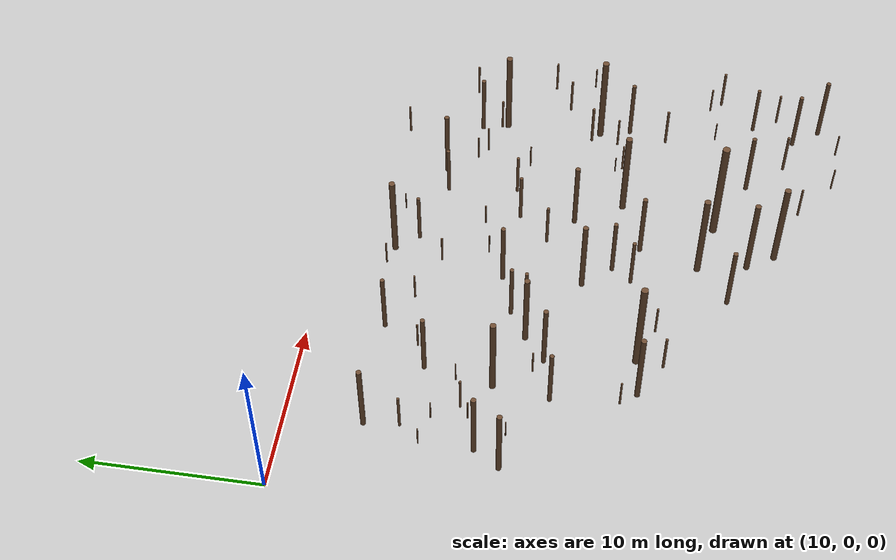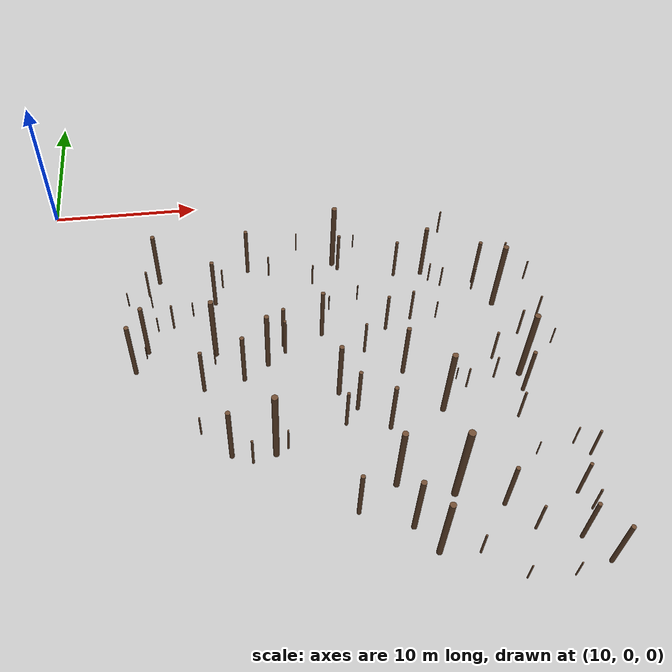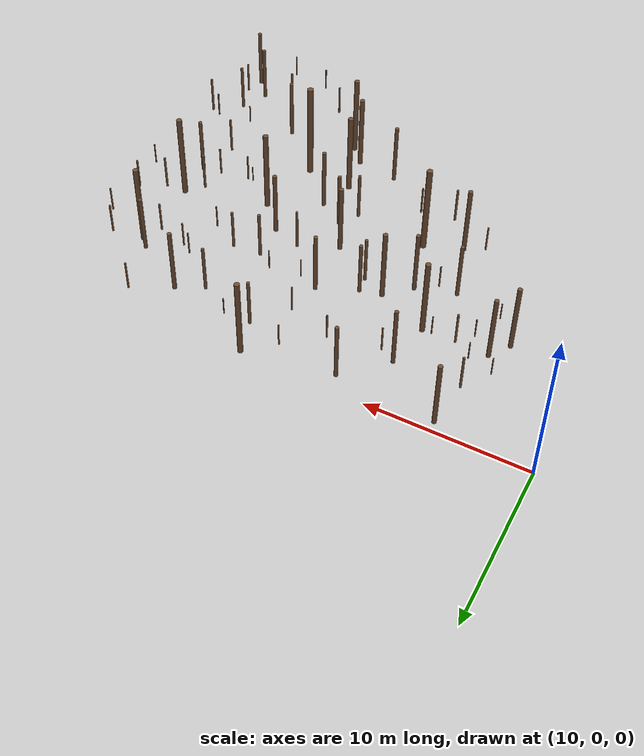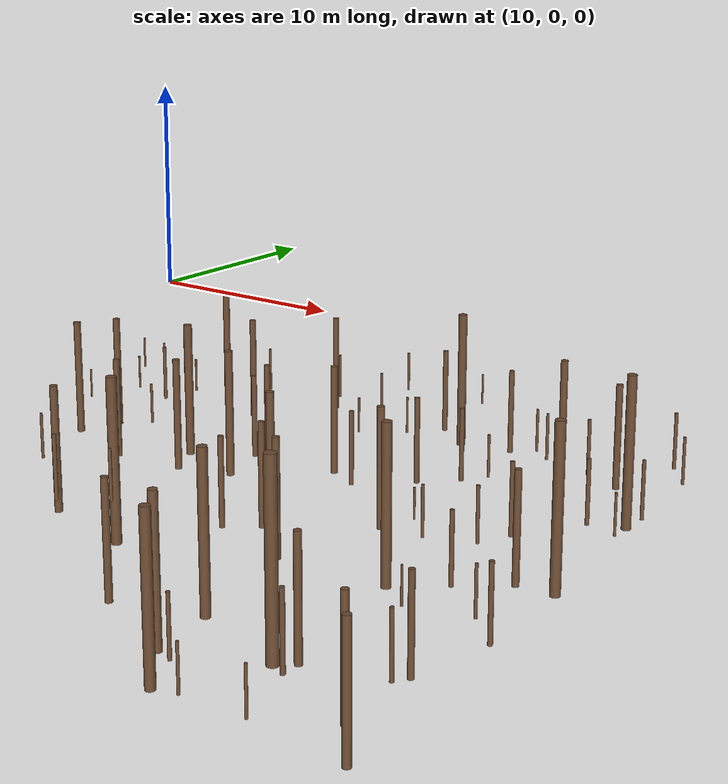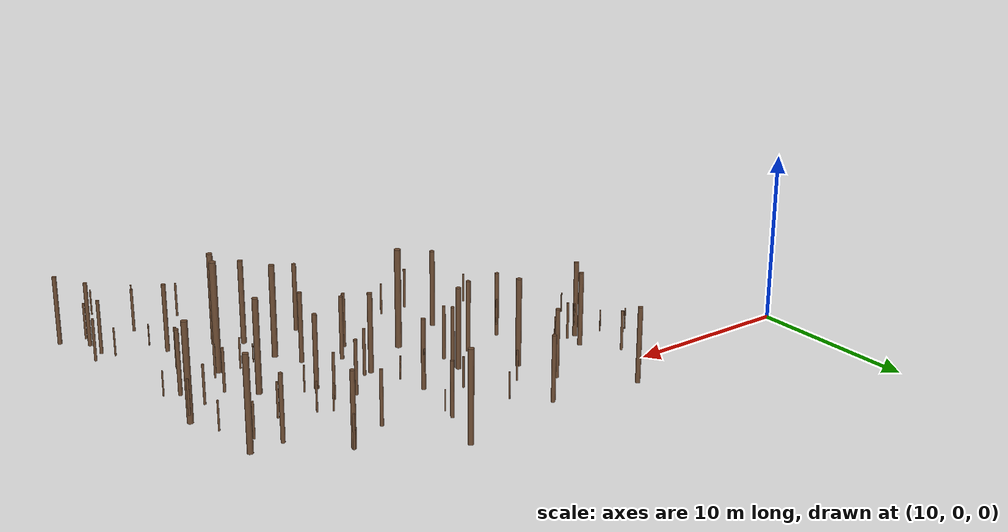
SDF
<sdf version="1.10">
 <model name="lehrforst_trees">
  <static>true</static>
  <link name="tree_0034">
   <pose>35.26 -22.294 -1.24 3.14159 0 0</pose>
   <visual name="visual">
    <geometry><cylinder><radius>0.230</radius><length>7.360</length></cylinder></geometry>
    <material>
     <ambient>0.42 0.29 0.19 1</ambient>
     <diffuse>0.42 0.29 0.19 1</diffuse>
     <specular>0.42 0.29 0.19 1</specular>
    </material>
   </visual>
   <collision name="collision">
    <geometry><cylinder><radius>0.230</radius><length>7.360</length></cylinder></geometry>
   </collision>
  </link>
  <link name="tree_0080">
   <pose>24.254 -18.389 -1.363 3.14159 0 0</pose>
   <visual name="visual">
    <geometry><cylinder><radius>0.209</radius><length>6.688</length></cylinder></geometry>
    <material>
     <ambient>0.42 0.29 0.19 1</ambient>
     <diffuse>0.42 0.29 0.19 1</diffuse>
     <specular>0.42 0.29 0.19 1</specular>
    </material>
   </visual>
   <collision name="collision">
    <geometry><cylinder><radius>0.209</radius><length>6.688</length></cylinder></geometry>
   </collision>
  </link>
  <link name="tree_0128">
   <pose>41.271 -14.518 -0.474 3.14159 0 0</pose>
   <visual name="visual">
    <geometry><cylinder><radius>0.197</radius><length>6.304</length></cylinder></geometry>
    <material>
     <ambient>0.42 0.29 0.19 1</ambient>
     <diffuse>0.42 0.29 0.19 1</diffuse>
     <specular>0.42 0.29 0.19 1</specular>
    </material>
   </visual>
   <collision name="collision">
    <geometry><cylinder><radius>0.197</radius><length>6.304</length></cylinder></geometry>
   </collision>
  </link>
  <link name="tree_0133">
   <pose>33.437 -26.119 -1.676 3.14159 0 0</pose>
   <visual name="visual">
    <geometry><cylinder><radius>0.194</radius><length>6.208</length></cylinder></geometry>
    <material>
     <ambient>0.42 0.29 0.19 1</ambient>
     <diffuse>0.42 0.29 0.19 1</diffuse>
     <specular>0.42 0.29 0.19 1</specular>
    </material>
   </visual>
   <collision name="collision">
    <geometry><cylinder><radius>0.194</radius><length>6.208</length></cylinder></geometry>
   </collision>
  </link>
  <link name="tree_0134">
   <pose>31.612 -21.485 -1.44 3.14159 0 0</pose>
   <visual name="visual">
    <geometry><cylinder><radius>0.194</radius><length>6.208</length></cylinder></geometry>
    <material>
     <ambient>0.42 0.29 0.19 1</ambient>
     <diffuse>0.42 0.29 0.19 1</diffuse>
     <specular>0.42 0.29 0.19 1</specular>
    </material>
   </visual>
   <collision name="collision">
    <geometry><cylinder><radius>0.194</radius><length>6.208</length></cylinder></geometry>
   </collision>
  </link>
  <link name="tree_0143">
   <pose>35.634 -16.514 -1.045 3.14159 0 0</pose>
   <visual name="visual">
    <geometry><cylinder><radius>0.192</radius><length>6.144</length></cylinder></geometry>
    <material>
     <ambient>0.42 0.29 0.19 1</ambient>
     <diffuse>0.42 0.29 0.19 1</diffuse>
     <specular>0.42 0.29 0.19 1</specular>
    </material>
   </visual>
   <collision name="collision">
    <geometry><cylinder><radius>0.192</radius><length>6.144</length></cylinder></geometry>
   </collision>
  </link>
  <link name="tree_0173">
   <pose>40.775 -8.554 -0.27 3.14159 0 0</pose>
   <visual name="visual">
    <geometry><cylinder><radius>0.186</radius><length>5.952</length></cylinder></geometry>
    <material>
     <ambient>0.42 0.29 0.19 1</ambient>
     <diffuse>0.42 0.29 0.19 1</diffuse>
     <specular>0.42 0.29 0.19 1</specular>
    </material>
   </visual>
   <collision name="collision">
    <geometry><cylinder><radius>0.186</radius><length>5.952</length></cylinder></geometry>
   </collision>
  </link>
  <link name="tree_0188">
   <pose>29.904 -3.082 -0.838 3.14159 0 0</pose>
   <visual name="visual">
    <geometry><cylinder><radius>0.182</radius><length>5.824</length></cylinder></geometry>
    <material>
     <ambient>0.42 0.29 0.19 1</ambient>
     <diffuse>0.42 0.29 0.19 1</diffuse>
     <specular>0.42 0.29 0.19 1</specular>
    </material>
   </visual>
   <collision name="collision">
    <geometry><cylinder><radius>0.182</radius><length>5.824</length></cylinder></geometry>
   </collision>
  </link>
  <link name="tree_0197">
   <pose>20.782 -10.396 -1.178 3.14159 0 0</pose>
   <visual name="visual">
    <geometry><cylinder><radius>0.180</radius><length>5.760</length></cylinder></geometry>
    <material>
     <ambient>0.42 0.29 0.19 1</ambient>
     <diffuse>0.42 0.29 0.19 1</diffuse>
     <specular>0.42 0.29 0.19 1</specular>
    </material>
   </visual>
   <collision name="collision">
    <geometry><cylinder><radius>0.180</radius><length>5.760</length></cylinder></geometry>
   </collision>
  </link>
  <link name="tree_0222">
   <pose>32.17 -24.463 -1.665 3.14159 0 0</pose>
   <visual name="visual">
    <geometry><cylinder><radius>0.177</radius><length>5.664</length></cylinder></geometry>
    <material>
     <ambient>0.42 0.29 0.19 1</ambient>
     <diffuse>0.42 0.29 0.19 1</diffuse>
     <specular>0.42 0.29 0.19 1</specular>
    </material>
   </visual>
   <collision name="collision">
    <geometry><cylinder><radius>0.177</radius><length>5.664</length></cylinder></geometry>
   </collision>
  </link>
  <link name="tree_0275">
   <pose>24.317 -11.821 -1.164 3.14159 0 0</pose>
   <visual name="visual">
    <geometry><cylinder><radius>0.166</radius><length>5.312</length></cylinder></geometry>
    <material>
     <ambient>0.42 0.29 0.19 1</ambient>
     <diffuse>0.42 0.29 0.19 1</diffuse>
     <specular>0.42 0.29 0.19 1</specular>
    </material>
   </visual>
   <collision name="collision">
    <geometry><cylinder><radius>0.166</radius><length>5.312</length></cylinder></geometry>
   </collision>
  </link>
  <link name="tree_0296">
   <pose>28.853 -14.649 -1.272 3.14159 0 0</pose>
   <visual name="visual">
    <geometry><cylinder><radius>0.163</radius><length>5.216</length></cylinder></geometry>
    <material>
     <ambient>0.42 0.29 0.19 1</ambient>
     <diffuse>0.42 0.29 0.19 1</diffuse>
     <specular>0.42 0.29 0.19 1</specular>
    </material>
   </visual>
   <collision name="collision">
    <geometry><cylinder><radius>0.163</radius><length>5.216</length></cylinder></geometry>
   </collision>
  </link>
  <link name="tree_0307">
   <pose>21.382 -18.65 -1.42 3.14159 0 0</pose>
   <visual name="visual">
    <geometry><cylinder><radius>0.161</radius><length>5.152</length></cylinder></geometry>
    <material>
     <ambient>0.42 0.29 0.19 1</ambient>
     <diffuse>0.42 0.29 0.19 1</diffuse>
     <specular>0.42 0.29 0.19 1</specular>
    </material>
   </visual>
   <collision name="collision">
    <geometry><cylinder><radius>0.161</radius><length>5.152</length></cylinder></geometry>
   </collision>
  </link>
  <link name="tree_0325">
   <pose>15.254 -11.534 -1.339 3.14159 0 0</pose>
   <visual name="visual">
    <geometry><cylinder><radius>0.157</radius><length>5.024</length></cylinder></geometry>
    <material>
     <ambient>0.42 0.29 0.19 1</ambient>
     <diffuse>0.42 0.29 0.19 1</diffuse>
     <specular>0.42 0.29 0.19 1</specular>
    </material>
   </visual>
   <collision name="collision">
    <geometry><cylinder><radius>0.157</radius><length>5.024</length></cylinder></geometry>
   </collision>
  </link>
  <link name="tree_0349">
   <pose>16.989 -3.622 -1.29 3.14159 0 0</pose>
   <visual name="visual">
    <geometry><cylinder><radius>0.153</radius><length>4.896</length></cylinder></geometry>
    <material>
     <ambient>0.42 0.29 0.19 1</ambient>
     <diffuse>0.42 0.29 0.19 1</diffuse>
     <specular>0.42 0.29 0.19 1</specular>
    </material>
   </visual>
   <collision name="collision">
    <geometry><cylinder><radius>0.153</radius><length>4.896</length></cylinder></geometry>
   </collision>
  </link>
  <link name="tree_0359">
   <pose>16.137 -10.009 -1.289 3.14159 0 0</pose>
   <visual name="visual">
    <geometry><cylinder><radius>0.152</radius><length>4.864</length></cylinder></geometry>
    <material>
     <ambient>0.42 0.29 0.19 1</ambient>
     <diffuse>0.42 0.29 0.19 1</diffuse>
     <specular>0.42 0.29 0.19 1</specular>
    </material>
   </visual>
   <collision name="collision">
    <geometry><cylinder><radius>0.152</radius><length>4.864</length></cylinder></geometry>
   </collision>
  </link>
  <link name="tree_0364">
   <pose>33.336 -13.698 -0.994 3.14159 0 0</pose>
   <visual name="visual">
    <geometry><cylinder><radius>0.149</radius><length>4.768</length></cylinder></geometry>
    <material>
     <ambient>0.42 0.29 0.19 1</ambient>
     <diffuse>0.42 0.29 0.19 1</diffuse>
     <specular>0.42 0.29 0.19 1</specular>
    </material>
   </visual>
   <collision name="collision">
    <geometry><cylinder><radius>0.149</radius><length>4.768</length></cylinder></geometry>
   </collision>
  </link>
  <link name="tree_0375">
   <pose>36.153 -5.321 -0.683 3.14159 0 0</pose>
   <visual name="visual">
    <geometry><cylinder><radius>0.147</radius><length>4.704</length></cylinder></geometry>
    <material>
     <ambient>0.42 0.29 0.19 1</ambient>
     <diffuse>0.42 0.29 0.19 1</diffuse>
     <specular>0.42 0.29 0.19 1</specular>
    </material>
   </visual>
   <collision name="collision">
    <geometry><cylinder><radius>0.147</radius><length>4.704</length></cylinder></geometry>
   </collision>
  </link>
  <link name="tree_0385">
   <pose>22.614 -13.105 -1.21 3.14159 0 0</pose>
   <visual name="visual">
    <geometry><cylinder><radius>0.146</radius><length>4.672</length></cylinder></geometry>
    <material>
     <ambient>0.42 0.29 0.19 1</ambient>
     <diffuse>0.42 0.29 0.19 1</diffuse>
     <specular>0.42 0.29 0.19 1</specular>
    </material>
   </visual>
   <collision name="collision">
    <geometry><cylinder><radius>0.146</radius><length>4.672</length></cylinder></geometry>
   </collision>
  </link>
  <link name="tree_0402">
   <pose>31.808 -17.876 -1.258 3.14159 0 0</pose>
   <visual name="visual">
    <geometry><cylinder><radius>0.144</radius><length>4.608</length></cylinder></geometry>
    <material>
     <ambient>0.42 0.29 0.19 1</ambient>
     <diffuse>0.42 0.29 0.19 1</diffuse>
     <specular>0.42 0.29 0.19 1</specular>
    </material>
   </visual>
   <collision name="collision">
    <geometry><cylinder><radius>0.144</radius><length>4.608</length></cylinder></geometry>
   </collision>
  </link>
  <link name="tree_0405">
   <pose>28.887 -23.378 -1.755 3.14159 0 0</pose>
   <visual name="visual">
    <geometry><cylinder><radius>0.143</radius><length>4.576</length></cylinder></geometry>
    <material>
     <ambient>0.42 0.29 0.19 1</ambient>
     <diffuse>0.42 0.29 0.19 1</diffuse>
     <specular>0.42 0.29 0.19 1</specular>
    </material>
   </visual>
   <collision name="collision">
    <geometry><cylinder><radius>0.143</radius><length>4.576</length></cylinder></geometry>
   </collision>
  </link>
  <link name="tree_0420">
   <pose>28.259 -9.927 -1.147 3.14159 0 0</pose>
   <visual name="visual">
    <geometry><cylinder><radius>0.141</radius><length>4.512</length></cylinder></geometry>
    <material>
     <ambient>0.42 0.29 0.19 1</ambient>
     <diffuse>0.42 0.29 0.19 1</diffuse>
     <specular>0.42 0.29 0.19 1</specular>
    </material>
   </visual>
   <collision name="collision">
    <geometry><cylinder><radius>0.141</radius><length>4.512</length></cylinder></geometry>
   </collision>
  </link>
  <link name="tree_0426">
   <pose>42.952 -28.404 -0.898 3.14159 0 0</pose>
   <visual name="visual">
    <geometry><cylinder><radius>0.140</radius><length>4.480</length></cylinder></geometry>
    <material>
     <ambient>0.42 0.29 0.19 1</ambient>
     <diffuse>0.42 0.29 0.19 1</diffuse>
     <specular>0.42 0.29 0.19 1</specular>
    </material>
   </visual>
   <collision name="collision">
    <geometry><cylinder><radius>0.140</radius><length>4.480</length></cylinder></geometry>
   </collision>
  </link>
  <link name="tree_0431">
   <pose>37.771 -24.047 -1.22 3.14159 0 0</pose>
   <visual name="visual">
    <geometry><cylinder><radius>0.139</radius><length>4.448</length></cylinder></geometry>
    <material>
     <ambient>0.42 0.29 0.19 1</ambient>
     <diffuse>0.42 0.29 0.19 1</diffuse>
     <specular>0.42 0.29 0.19 1</specular>
    </material>
   </visual>
   <collision name="collision">
    <geometry><cylinder><radius>0.139</radius><length>4.448</length></cylinder></geometry>
   </collision>
  </link>
  <link name="tree_0439">
   <pose>21.001 -6.414 -1.113 3.14159 0 0</pose>
   <visual name="visual">
    <geometry><cylinder><radius>0.138</radius><length>4.416</length></cylinder></geometry>
    <material>
     <ambient>0.42 0.29 0.19 1</ambient>
     <diffuse>0.42 0.29 0.19 1</diffuse>
     <specular>0.42 0.29 0.19 1</specular>
    </material>
   </visual>
   <collision name="collision">
    <geometry><cylinder><radius>0.138</radius><length>4.416</length></cylinder></geometry>
   </collision>
  </link>
  <link name="tree_0482">
   <pose>23.525 -3.666 -1.079 3.14159 0 0</pose>
   <visual name="visual">
    <geometry><cylinder><radius>0.131</radius><length>4.192</length></cylinder></geometry>
    <material>
     <ambient>0.42 0.29 0.19 1</ambient>
     <diffuse>0.42 0.29 0.19 1</diffuse>
     <specular>0.42 0.29 0.19 1</specular>
    </material>
   </visual>
   <collision name="collision">
    <geometry><cylinder><radius>0.131</radius><length>4.192</length></cylinder></geometry>
   </collision>
  </link>
  <link name="tree_0483">
   <pose>19.87 -13.776 -1.284 3.14159 0 0</pose>
   <visual name="visual">
    <geometry><cylinder><radius>0.131</radius><length>4.192</length></cylinder></geometry>
    <material>
     <ambient>0.42 0.29 0.19 1</ambient>
     <diffuse>0.42 0.29 0.19 1</diffuse>
     <specular>0.42 0.29 0.19 1</specular>
    </material>
   </visual>
   <collision name="collision">
    <geometry><cylinder><radius>0.131</radius><length>4.192</length></cylinder></geometry>
   </collision>
  </link>
  <link name="tree_0490">
   <pose>41.663 -26.793 -0.946 3.14159 0 0</pose>
   <visual name="visual">
    <geometry><cylinder><radius>0.130</radius><length>4.160</length></cylinder></geometry>
    <material>
     <ambient>0.42 0.29 0.19 1</ambient>
     <diffuse>0.42 0.29 0.19 1</diffuse>
     <specular>0.42 0.29 0.19 1</specular>
    </material>
   </visual>
   <collision name="collision">
    <geometry><cylinder><radius>0.130</radius><length>4.160</length></cylinder></geometry>
   </collision>
  </link>
  <link name="tree_0493">
   <pose>39.534 -7.108 -0.313 3.14159 0 0</pose>
   <visual name="visual">
    <geometry><cylinder><radius>0.129</radius><length>4.128</length></cylinder></geometry>
    <material>
     <ambient>0.42 0.29 0.19 1</ambient>
     <diffuse>0.42 0.29 0.19 1</diffuse>
     <specular>0.42 0.29 0.19 1</specular>
    </material>
   </visual>
   <collision name="collision">
    <geometry><cylinder><radius>0.129</radius><length>4.128</length></cylinder></geometry>
   </collision>
  </link>
  <link name="tree_0494">
   <pose>40.842 -16.412 -0.647 3.14159 0 0</pose>
   <visual name="visual">
    <geometry><cylinder><radius>0.129</radius><length>4.128</length></cylinder></geometry>
    <material>
     <ambient>0.42 0.29 0.19 1</ambient>
     <diffuse>0.42 0.29 0.19 1</diffuse>
     <specular>0.42 0.29 0.19 1</specular>
    </material>
   </visual>
   <collision name="collision">
    <geometry><cylinder><radius>0.129</radius><length>4.128</length></cylinder></geometry>
   </collision>
  </link>
  <link name="tree_0497">
   <pose>29.845 -16.349 -1.259 3.14159 0 0</pose>
   <visual name="visual">
    <geometry><cylinder><radius>0.129</radius><length>4.128</length></cylinder></geometry>
    <material>
     <ambient>0.42 0.29 0.19 1</ambient>
     <diffuse>0.42 0.29 0.19 1</diffuse>
     <specular>0.42 0.29 0.19 1</specular>
    </material>
   </visual>
   <collision name="collision">
    <geometry><cylinder><radius>0.129</radius><length>4.128</length></cylinder></geometry>
   </collision>
  </link>
  <link name="tree_0530">
   <pose>25.49 -10.808 -1.122 3.14159 0 0</pose>
   <visual name="visual">
    <geometry><cylinder><radius>0.124</radius><length>3.968</length></cylinder></geometry>
    <material>
     <ambient>0.42 0.29 0.19 1</ambient>
     <diffuse>0.42 0.29 0.19 1</diffuse>
     <specular>0.42 0.29 0.19 1</specular>
    </material>
   </visual>
   <collision name="collision">
    <geometry><cylinder><radius>0.124</radius><length>3.968</length></cylinder></geometry>
   </collision>
  </link>
  <link name="tree_0604">
   <pose>28.915 -17.538 -1.393 3.14159 0 0</pose>
   <visual name="visual">
    <geometry><cylinder><radius>0.111</radius><length>3.552</length></cylinder></geometry>
    <material>
     <ambient>0.42 0.29 0.19 1</ambient>
     <diffuse>0.42 0.29 0.19 1</diffuse>
     <specular>0.42 0.29 0.19 1</specular>
    </material>
   </visual>
   <collision name="collision">
    <geometry><cylinder><radius>0.111</radius><length>3.552</length></cylinder></geometry>
   </collision>
  </link>
  <link name="tree_0610">
   <pose>30.066 -4.597 -0.901 3.14159 0 0</pose>
   <visual name="visual">
    <geometry><cylinder><radius>0.109</radius><length>3.488</length></cylinder></geometry>
    <material>
     <ambient>0.42 0.29 0.19 1</ambient>
     <diffuse>0.42 0.29 0.19 1</diffuse>
     <specular>0.42 0.29 0.19 1</specular>
    </material>
   </visual>
   <collision name="collision">
    <geometry><cylinder><radius>0.109</radius><length>3.488</length></cylinder></geometry>
   </collision>
  </link>
  <link name="tree_0619">
   <pose>32.661 -10.408 -0.972 3.14159 0 0</pose>
   <visual name="visual">
    <geometry><cylinder><radius>0.108</radius><length>3.456</length></cylinder></geometry>
    <material>
     <ambient>0.42 0.29 0.19 1</ambient>
     <diffuse>0.42 0.29 0.19 1</diffuse>
     <specular>0.42 0.29 0.19 1</specular>
    </material>
   </visual>
   <collision name="collision">
    <geometry><cylinder><radius>0.108</radius><length>3.456</length></cylinder></geometry>
   </collision>
  </link>
  <link name="tree_0623">
   <pose>42.082 -24.192 -0.792 3.14159 0 0</pose>
   <visual name="visual">
    <geometry><cylinder><radius>0.108</radius><length>3.456</length></cylinder></geometry>
    <material>
     <ambient>0.42 0.29 0.19 1</ambient>
     <diffuse>0.42 0.29 0.19 1</diffuse>
     <specular>0.42 0.29 0.19 1</specular>
    </material>
   </visual>
   <collision name="collision">
    <geometry><cylinder><radius>0.108</radius><length>3.456</length></cylinder></geometry>
   </collision>
  </link>
  <link name="tree_0634">
   <pose>25.523 -11.66 -1.073 3.14159 0 0</pose>
   <visual name="visual">
    <geometry><cylinder><radius>0.107</radius><length>3.424</length></cylinder></geometry>
    <material>
     <ambient>0.42 0.29 0.19 1</ambient>
     <diffuse>0.42 0.29 0.19 1</diffuse>
     <specular>0.42 0.29 0.19 1</specular>
    </material>
   </visual>
   <collision name="collision">
    <geometry><cylinder><radius>0.107</radius><length>3.424</length></cylinder></geometry>
   </collision>
  </link>
  <link name="tree_0638">
   <pose>34.02 -5.76 -0.75 3.14159 0 0</pose>
   <visual name="visual">
    <geometry><cylinder><radius>0.107</radius><length>3.424</length></cylinder></geometry>
    <material>
     <ambient>0.42 0.29 0.19 1</ambient>
     <diffuse>0.42 0.29 0.19 1</diffuse>
     <specular>0.42 0.29 0.19 1</specular>
    </material>
   </visual>
   <collision name="collision">
    <geometry><cylinder><radius>0.107</radius><length>3.424</length></cylinder></geometry>
   </collision>
  </link>
  <link name="tree_0715">
   <pose>30.883 -12.247 -1.145 3.14159 0 0</pose>
   <visual name="visual">
    <geometry><cylinder><radius>0.093</radius><length>2.976</length></cylinder></geometry>
    <material>
     <ambient>0.42 0.29 0.19 1</ambient>
     <diffuse>0.42 0.29 0.19 1</diffuse>
     <specular>0.42 0.29 0.19 1</specular>
    </material>
   </visual>
   <collision name="collision">
    <geometry><cylinder><radius>0.093</radius><length>2.976</length></cylinder></geometry>
   </collision>
  </link>
  <link name="tree_0726">
   <pose>34.435 -9.975 -0.89 3.14159 0 0</pose>
   <visual name="visual">
    <geometry><cylinder><radius>0.091</radius><length>2.912</length></cylinder></geometry>
    <material>
     <ambient>0.42 0.29 0.19 1</ambient>
     <diffuse>0.42 0.29 0.19 1</diffuse>
     <specular>0.42 0.29 0.19 1</specular>
    </material>
   </visual>
   <collision name="collision">
    <geometry><cylinder><radius>0.091</radius><length>2.912</length></cylinder></geometry>
   </collision>
  </link>
  <link name="tree_0749">
   <pose>38.928 -26.196 -1.146 3.14159 0 0</pose>
   <visual name="visual">
    <geometry><cylinder><radius>0.087</radius><length>2.784</length></cylinder></geometry>
    <material>
     <ambient>0.42 0.29 0.19 1</ambient>
     <diffuse>0.42 0.29 0.19 1</diffuse>
     <specular>0.42 0.29 0.19 1</specular>
    </material>
   </visual>
   <collision name="collision">
    <geometry><cylinder><radius>0.087</radius><length>2.784</length></cylinder></geometry>
   </collision>
  </link>
  <link name="tree_0765">
   <pose>39.214 -14.09 -0.722 3.14159 0 0</pose>
   <visual name="visual">
    <geometry><cylinder><radius>0.086</radius><length>2.752</length></cylinder></geometry>
    <material>
     <ambient>0.42 0.29 0.19 1</ambient>
     <diffuse>0.42 0.29 0.19 1</diffuse>
     <specular>0.42 0.29 0.19 1</specular>
    </material>
   </visual>
   <collision name="collision">
    <geometry><cylinder><radius>0.086</radius><length>2.752</length></cylinder></geometry>
   </collision>
  </link>
  <link name="tree_0782">
   <pose>43.416 -22.044 -0.553 3.14159 0 0</pose>
   <visual name="visual">
    <geometry><cylinder><radius>0.084</radius><length>2.688</length></cylinder></geometry>
    <material>
     <ambient>0.42 0.29 0.19 1</ambient>
     <diffuse>0.42 0.29 0.19 1</diffuse>
     <specular>0.42 0.29 0.19 1</specular>
    </material>
   </visual>
   <collision name="collision">
    <geometry><cylinder><radius>0.084</radius><length>2.688</length></cylinder></geometry>
   </collision>
  </link>
  <link name="tree_0790">
   <pose>39.817 -18.717 -0.848 3.14159 0 0</pose>
   <visual name="visual">
    <geometry><cylinder><radius>0.083</radius><length>2.656</length></cylinder></geometry>
    <material>
     <ambient>0.42 0.29 0.19 1</ambient>
     <diffuse>0.42 0.29 0.19 1</diffuse>
     <specular>0.42 0.29 0.19 1</specular>
    </material>
   </visual>
   <collision name="collision">
    <geometry><cylinder><radius>0.083</radius><length>2.656</length></cylinder></geometry>
   </collision>
  </link>
  <link name="tree_0793">
   <pose>22.698 -19.93 -1.506 3.14159 0 0</pose>
   <visual name="visual">
    <geometry><cylinder><radius>0.082</radius><length>2.624</length></cylinder></geometry>
    <material>
     <ambient>0.42 0.29 0.19 1</ambient>
     <diffuse>0.42 0.29 0.19 1</diffuse>
     <specular>0.42 0.29 0.19 1</specular>
    </material>
   </visual>
   <collision name="collision">
    <geometry><cylinder><radius>0.082</radius><length>2.624</length></cylinder></geometry>
   </collision>
  </link>
  <link name="tree_0814">
   <pose>16.38 -5.848 -1.256 3.14159 0 0</pose>
   <visual name="visual">
    <geometry><cylinder><radius>0.080</radius><length>2.560</length></cylinder></geometry>
    <material>
     <ambient>0.42 0.29 0.19 1</ambient>
     <diffuse>0.42 0.29 0.19 1</diffuse>
     <specular>0.42 0.29 0.19 1</specular>
    </material>
   </visual>
   <collision name="collision">
    <geometry><cylinder><radius>0.080</radius><length>2.560</length></cylinder></geometry>
   </collision>
  </link>
  <link name="tree_0830">
   <pose>41.306 -12.521 -0.455 3.14159 0 0</pose>
   <visual name="visual">
    <geometry><cylinder><radius>0.076</radius><length>2.432</length></cylinder></geometry>
    <material>
     <ambient>0.42 0.29 0.19 1</ambient>
     <diffuse>0.42 0.29 0.19 1</diffuse>
     <specular>0.42 0.29 0.19 1</specular>
    </material>
   </visual>
   <collision name="collision">
    <geometry><cylinder><radius>0.076</radius><length>2.432</length></cylinder></geometry>
   </collision>
  </link>
  <link name="tree_0842">
   <pose>18.046 -8.983 -1.252 3.14159 0 0</pose>
   <visual name="visual">
    <geometry><cylinder><radius>0.074</radius><length>2.368</length></cylinder></geometry>
    <material>
     <ambient>0.42 0.29 0.19 1</ambient>
     <diffuse>0.42 0.29 0.19 1</diffuse>
     <specular>0.42 0.29 0.19 1</specular>
    </material>
   </visual>
   <collision name="collision">
    <geometry><cylinder><radius>0.074</radius><length>2.368</length></cylinder></geometry>
   </collision>
  </link>
  <link name="tree_0851">
   <pose>42.399 -25.593 -0.797 3.14159 0 0</pose>
   <visual name="visual">
    <geometry><cylinder><radius>0.072</radius><length>2.304</length></cylinder></geometry>
    <material>
     <ambient>0.42 0.29 0.19 1</ambient>
     <diffuse>0.42 0.29 0.19 1</diffuse>
     <specular>0.42 0.29 0.19 1</specular>
    </material>
   </visual>
   <collision name="collision">
    <geometry><cylinder><radius>0.072</radius><length>2.304</length></cylinder></geometry>
   </collision>
  </link>
  <link name="tree_0874">
   <pose>35.394 -27.238 -1.614 3.14159 0 0</pose>
   <visual name="visual">
    <geometry><cylinder><radius>0.070</radius><length>2.240</length></cylinder></geometry>
    <material>
     <ambient>0.42 0.29 0.19 1</ambient>
     <diffuse>0.42 0.29 0.19 1</diffuse>
     <specular>0.42 0.29 0.19 1</specular>
    </material>
   </visual>
   <collision name="collision">
    <geometry><cylinder><radius>0.070</radius><length>2.240</length></cylinder></geometry>
   </collision>
  </link>
  <link name="tree_0884">
   <pose>41.607 -6.519 -0.203 3.14159 0 0</pose>
   <visual name="visual">
    <geometry><cylinder><radius>0.068</radius><length>2.176</length></cylinder></geometry>
    <material>
     <ambient>0.42 0.29 0.19 1</ambient>
     <diffuse>0.42 0.29 0.19 1</diffuse>
     <specular>0.42 0.29 0.19 1</specular>
    </material>
   </visual>
   <collision name="collision">
    <geometry><cylinder><radius>0.068</radius><length>2.176</length></cylinder></geometry>
   </collision>
  </link>
  <link name="tree_0885">
   <pose>39.033 -8.402 -0.468 3.14159 0 0</pose>
   <visual name="visual">
    <geometry><cylinder><radius>0.068</radius><length>2.176</length></cylinder></geometry>
    <material>
     <ambient>0.42 0.29 0.19 1</ambient>
     <diffuse>0.42 0.29 0.19 1</diffuse>
     <specular>0.42 0.29 0.19 1</specular>
    </material>
   </visual>
   <collision name="collision">
    <geometry><cylinder><radius>0.068</radius><length>2.176</length></cylinder></geometry>
   </collision>
  </link>
  <link name="tree_0888">
   <pose>42.833 -11.428 -0.369 3.14159 0 0</pose>
   <visual name="visual">
    <geometry><cylinder><radius>0.068</radius><length>2.176</length></cylinder></geometry>
    <material>
     <ambient>0.42 0.29 0.19 1</ambient>
     <diffuse>0.42 0.29 0.19 1</diffuse>
     <specular>0.42 0.29 0.19 1</specular>
    </material>
   </visual>
   <collision name="collision">
    <geometry><cylinder><radius>0.068</radius><length>2.176</length></cylinder></geometry>
   </collision>
  </link>
  <link name="tree_0910">
   <pose>38.891 -15.741 -0.843 3.14159 0 0</pose>
   <visual name="visual">
    <geometry><cylinder><radius>0.066</radius><length>2.112</length></cylinder></geometry>
    <material>
     <ambient>0.42 0.29 0.19 1</ambient>
     <diffuse>0.42 0.29 0.19 1</diffuse>
     <specular>0.42 0.29 0.19 1</specular>
    </material>
   </visual>
   <collision name="collision">
    <geometry><cylinder><radius>0.066</radius><length>2.112</length></cylinder></geometry>
   </collision>
  </link>
  <link name="tree_0915">
   <pose>37.796 -2.718 -0.481 3.14159 0 0</pose>
   <visual name="visual">
    <geometry><cylinder><radius>0.065</radius><length>2.080</length></cylinder></geometry>
    <material>
     <ambient>0.42 0.29 0.19 1</ambient>
     <diffuse>0.42 0.29 0.19 1</diffuse>
     <specular>0.42 0.29 0.19 1</specular>
    </material>
   </visual>
   <collision name="collision">
    <geometry><cylinder><radius>0.065</radius><length>2.080</length></cylinder></geometry>
   </collision>
  </link>
  <link name="tree_0918">
   <pose>24.959 -19.278 -1.493 3.14159 0 0</pose>
   <visual name="visual">
    <geometry><cylinder><radius>0.065</radius><length>2.080</length></cylinder></geometry>
    <material>
     <ambient>0.42 0.29 0.19 1</ambient>
     <diffuse>0.42 0.29 0.19 1</diffuse>
     <specular>0.42 0.29 0.19 1</specular>
    </material>
   </visual>
   <collision name="collision">
    <geometry><cylinder><radius>0.065</radius><length>2.080</length></cylinder></geometry>
   </collision>
  </link>
  <link name="tree_0948">
   <pose>36.958 -16.224 -1.032 3.14159 0 0</pose>
   <visual name="visual">
    <geometry><cylinder><radius>0.061</radius><length>1.952</length></cylinder></geometry>
    <material>
     <ambient>0.42 0.29 0.19 1</ambient>
     <diffuse>0.42 0.29 0.19 1</diffuse>
     <specular>0.42 0.29 0.19 1</specular>
    </material>
   </visual>
   <collision name="collision">
    <geometry><cylinder><radius>0.061</radius><length>1.952</length></cylinder></geometry>
   </collision>
  </link>
  <link name="tree_0964">
   <pose>28.006 -6.327 -1.057 3.14159 0 0</pose>
   <visual name="visual">
    <geometry><cylinder><radius>0.060</radius><length>1.920</length></cylinder></geometry>
    <material>
     <ambient>0.42 0.29 0.19 1</ambient>
     <diffuse>0.42 0.29 0.19 1</diffuse>
     <specular>0.42 0.29 0.19 1</specular>
    </material>
   </visual>
   <collision name="collision">
    <geometry><cylinder><radius>0.060</radius><length>1.920</length></cylinder></geometry>
   </collision>
  </link>
  <link name="tree_0968">
   <pose>19.574 -17.719 -1.493 3.14159 0 0</pose>
   <visual name="visual">
    <geometry><cylinder><radius>0.059</radius><length>1.888</length></cylinder></geometry>
    <material>
     <ambient>0.42 0.29 0.19 1</ambient>
     <diffuse>0.42 0.29 0.19 1</diffuse>
     <specular>0.42 0.29 0.19 1</specular>
    </material>
   </visual>
   <collision name="collision">
    <geometry><cylinder><radius>0.059</radius><length>1.888</length></cylinder></geometry>
   </collision>
  </link>
  <link name="tree_0972">
   <pose>24.972 -5.228 -1.043 3.14159 0 0</pose>
   <visual name="visual">
    <geometry><cylinder><radius>0.059</radius><length>1.888</length></cylinder></geometry>
    <material>
     <ambient>0.42 0.29 0.19 1</ambient>
     <diffuse>0.42 0.29 0.19 1</diffuse>
     <specular>0.42 0.29 0.19 1</specular>
    </material>
   </visual>
   <collision name="collision">
    <geometry><cylinder><radius>0.059</radius><length>1.888</length></cylinder></geometry>
   </collision>
  </link>
  <link name="tree_0979">
   <pose>36.912 -7.809 -0.652 3.14159 0 0</pose>
   <visual name="visual">
    <geometry><cylinder><radius>0.058</radius><length>1.856</length></cylinder></geometry>
    <material>
     <ambient>0.42 0.29 0.19 1</ambient>
     <diffuse>0.42 0.29 0.19 1</diffuse>
     <specular>0.42 0.29 0.19 1</specular>
    </material>
   </visual>
   <collision name="collision">
    <geometry><cylinder><radius>0.058</radius><length>1.856</length></cylinder></geometry>
   </collision>
  </link>
  <link name="tree_0980">
   <pose>21.625 -5.975 -1.15 3.14159 0 0</pose>
   <visual name="visual">
    <geometry><cylinder><radius>0.058</radius><length>1.856</length></cylinder></geometry>
    <material>
     <ambient>0.42 0.29 0.19 1</ambient>
     <diffuse>0.42 0.29 0.19 1</diffuse>
     <specular>0.42 0.29 0.19 1</specular>
    </material>
   </visual>
   <collision name="collision">
    <geometry><cylinder><radius>0.058</radius><length>1.856</length></cylinder></geometry>
   </collision>
  </link>
  <link name="tree_0994">
   <pose>42.451 -21.351 -0.671 3.14159 0 0</pose>
   <visual name="visual">
    <geometry><cylinder><radius>0.056</radius><length>1.792</length></cylinder></geometry>
    <material>
     <ambient>0.42 0.29 0.19 1</ambient>
     <diffuse>0.42 0.29 0.19 1</diffuse>
     <specular>0.42 0.29 0.19 1</specular>
    </material>
   </visual>
   <collision name="collision">
    <geometry><cylinder><radius>0.056</radius><length>1.792</length></cylinder></geometry>
   </collision>
  </link>
  <link name="tree_0996">
   <pose>42.769 -8.185 -0.251 3.14159 0 0</pose>
   <visual name="visual">
    <geometry><cylinder><radius>0.056</radius><length>1.792</length></cylinder></geometry>
    <material>
     <ambient>0.42 0.29 0.19 1</ambient>
     <diffuse>0.42 0.29 0.19 1</diffuse>
     <specular>0.42 0.29 0.19 1</specular>
    </material>
   </visual>
   <collision name="collision">
    <geometry><cylinder><radius>0.056</radius><length>1.792</length></cylinder></geometry>
   </collision>
  </link>
  <link name="tree_1016">
   <pose>36.156 -7.288 -0.691 3.14159 0 0</pose>
   <visual name="visual">
    <geometry><cylinder><radius>0.053</radius><length>1.696</length></cylinder></geometry>
    <material>
     <ambient>0.42 0.29 0.19 1</ambient>
     <diffuse>0.42 0.29 0.19 1</diffuse>
     <specular>0.42 0.29 0.19 1</specular>
    </material>
   </visual>
   <collision name="collision">
    <geometry><cylinder><radius>0.053</radius><length>1.696</length></cylinder></geometry>
   </collision>
  </link>
  <link name="tree_1024">
   <pose>20.759 -12.659 -1.21 3.14159 0 0</pose>
   <visual name="visual">
    <geometry><cylinder><radius>0.053</radius><length>1.696</length></cylinder></geometry>
    <material>
     <ambient>0.42 0.29 0.19 1</ambient>
     <diffuse>0.42 0.29 0.19 1</diffuse>
     <specular>0.42 0.29 0.19 1</specular>
    </material>
   </visual>
   <collision name="collision">
    <geometry><cylinder><radius>0.053</radius><length>1.696</length></cylinder></geometry>
   </collision>
  </link>
  <link name="tree_1029">
   <pose>36.029 -10.567 -0.834 3.14159 0 0</pose>
   <visual name="visual">
    <geometry><cylinder><radius>0.052</radius><length>1.664</length></cylinder></geometry>
    <material>
     <ambient>0.42 0.29 0.19 1</ambient>
     <diffuse>0.42 0.29 0.19 1</diffuse>
     <specular>0.42 0.29 0.19 1</specular>
    </material>
   </visual>
   <collision name="collision">
    <geometry><cylinder><radius>0.052</radius><length>1.664</length></cylinder></geometry>
   </collision>
  </link>
  <link name="tree_1036">
   <pose>37.563 -29.175 -1.547 3.14159 0 0</pose>
   <visual name="visual">
    <geometry><cylinder><radius>0.052</radius><length>1.664</length></cylinder></geometry>
    <material>
     <ambient>0.42 0.29 0.19 1</ambient>
     <diffuse>0.42 0.29 0.19 1</diffuse>
     <specular>0.42 0.29 0.19 1</specular>
    </material>
   </visual>
   <collision name="collision">
    <geometry><cylinder><radius>0.052</radius><length>1.664</length></cylinder></geometry>
   </collision>
  </link>
  <link name="tree_1037">
   <pose>40.269 -29.376 -1.324 3.14159 0 0</pose>
   <visual name="visual">
    <geometry><cylinder><radius>0.052</radius><length>1.664</length></cylinder></geometry>
    <material>
     <ambient>0.42 0.29 0.19 1</ambient>
     <diffuse>0.42 0.29 0.19 1</diffuse>
     <specular>0.42 0.29 0.19 1</specular>
    </material>
   </visual>
   <collision name="collision">
    <geometry><cylinder><radius>0.052</radius><length>1.664</length></cylinder></geometry>
   </collision>
  </link>
  <link name="tree_1040">
   <pose>27.157 -3.153 -0.933 3.14159 0 0</pose>
   <visual name="visual">
    <geometry><cylinder><radius>0.052</radius><length>1.664</length></cylinder></geometry>
    <material>
     <ambient>0.42 0.29 0.19 1</ambient>
     <diffuse>0.42 0.29 0.19 1</diffuse>
     <specular>0.42 0.29 0.19 1</specular>
    </material>
   </visual>
   <collision name="collision">
    <geometry><cylinder><radius>0.052</radius><length>1.664</length></cylinder></geometry>
   </collision>
  </link>
  <link name="tree_1081">
   <pose>43.104 -13.901 -0.42 3.14159 0 0</pose>
   <visual name="visual">
    <geometry><cylinder><radius>0.048</radius><length>1.536</length></cylinder></geometry>
    <material>
     <ambient>0.42 0.29 0.19 1</ambient>
     <diffuse>0.42 0.29 0.19 1</diffuse>
     <specular>0.42 0.29 0.19 1</specular>
    </material>
   </visual>
   <collision name="collision">
    <geometry><cylinder><radius>0.048</radius><length>1.536</length></cylinder></geometry>
   </collision>
  </link>
  <link name="tree_1099">
   <pose>30.867 -8.518 -0.795 3.14159 0 0</pose>
   <visual name="visual">
    <geometry><cylinder><radius>0.046</radius><length>1.472</length></cylinder></geometry>
    <material>
     <ambient>0.42 0.29 0.19 1</ambient>
     <diffuse>0.42 0.29 0.19 1</diffuse>
     <specular>0.42 0.29 0.19 1</specular>
    </material>
   </visual>
   <collision name="collision">
    <geometry><cylinder><radius>0.046</radius><length>1.472</length></cylinder></geometry>
   </collision>
  </link>
  <link name="tree_1102">
   <pose>17.043 -9.555 -1.256 3.14159 0 0</pose>
   <visual name="visual">
    <geometry><cylinder><radius>0.045</radius><length>1.440</length></cylinder></geometry>
    <material>
     <ambient>0.42 0.29 0.19 1</ambient>
     <diffuse>0.42 0.29 0.19 1</diffuse>
     <specular>0.42 0.29 0.19 1</specular>
    </material>
   </visual>
   <collision name="collision">
    <geometry><cylinder><radius>0.045</radius><length>1.440</length></cylinder></geometry>
   </collision>
  </link>
  <link name="tree_1104">
   <pose>19.463 -8.496 -1.208 3.14159 0 0</pose>
   <visual name="visual">
    <geometry><cylinder><radius>0.045</radius><length>1.440</length></cylinder></geometry>
    <material>
     <ambient>0.42 0.29 0.19 1</ambient>
     <diffuse>0.42 0.29 0.19 1</diffuse>
     <specular>0.42 0.29 0.19 1</specular>
    </material>
   </visual>
   <collision name="collision">
    <geometry><cylinder><radius>0.045</radius><length>1.440</length></cylinder></geometry>
   </collision>
  </link>
  <link name="tree_1111">
   <pose>28.83 -9.024 -1.06 3.14159 0 0</pose>
   <visual name="visual">
    <geometry><cylinder><radius>0.045</radius><length>1.440</length></cylinder></geometry>
    <material>
     <ambient>0.42 0.29 0.19 1</ambient>
     <diffuse>0.42 0.29 0.19 1</diffuse>
     <specular>0.42 0.29 0.19 1</specular>
    </material>
   </visual>
   <collision name="collision">
    <geometry><cylinder><radius>0.045</radius><length>1.440</length></cylinder></geometry>
   </collision>
  </link>
  <link name="tree_1131">
   <pose>16.661 -7.552 -1.116 3.14159 0 0</pose>
   <visual name="visual">
    <geometry><cylinder><radius>0.043</radius><length>1.376</length></cylinder></geometry>
    <material>
     <ambient>0.42 0.29 0.19 1</ambient>
     <diffuse>0.42 0.29 0.19 1</diffuse>
     <specular>0.42 0.29 0.19 1</specular>
    </material>
   </visual>
   <collision name="collision">
    <geometry><cylinder><radius>0.043</radius><length>1.376</length></cylinder></geometry>
   </collision>
  </link>
  <link name="tree_1135">
   <pose>15.009 -7.127 -1.245 3.14159 0 0</pose>
   <visual name="visual">
    <geometry><cylinder><radius>0.043</radius><length>1.376</length></cylinder></geometry>
    <material>
     <ambient>0.42 0.29 0.19 1</ambient>
     <diffuse>0.42 0.29 0.19 1</diffuse>
     <specular>0.42 0.29 0.19 1</specular>
    </material>
   </visual>
   <collision name="collision">
    <geometry><cylinder><radius>0.043</radius><length>1.376</length></cylinder></geometry>
   </collision>
  </link>
  <link name="tree_1147">
   <pose>40.032 -21.782 -0.996 3.14159 0 0</pose>
   <visual name="visual">
    <geometry><cylinder><radius>0.043</radius><length>1.376</length></cylinder></geometry>
    <material>
     <ambient>0.42 0.29 0.19 1</ambient>
     <diffuse>0.42 0.29 0.19 1</diffuse>
     <specular>0.42 0.29 0.19 1</specular>
    </material>
   </visual>
   <collision name="collision">
    <geometry><cylinder><radius>0.043</radius><length>1.376</length></cylinder></geometry>
   </collision>
  </link>
  <link name="tree_1188">
   <pose>31.276 -3.59 -0.851 3.14159 0 0</pose>
   <visual name="visual">
    <geometry><cylinder><radius>0.040</radius><length>1.280</length></cylinder></geometry>
    <material>
     <ambient>0.42 0.29 0.19 1</ambient>
     <diffuse>0.42 0.29 0.19 1</diffuse>
     <specular>0.42 0.29 0.19 1</specular>
    </material>
   </visual>
   <collision name="collision">
    <geometry><cylinder><radius>0.040</radius><length>1.280</length></cylinder></geometry>
   </collision>
  </link>
  <link name="tree_1193">
   <pose>16.249 -11.759 -1.375 3.14159 0 0</pose>
   <visual name="visual">
    <geometry><cylinder><radius>0.039</radius><length>1.248</length></cylinder></geometry>
    <material>
     <ambient>0.42 0.29 0.19 1</ambient>
     <diffuse>0.42 0.29 0.19 1</diffuse>
     <specular>0.42 0.29 0.19 1</specular>
    </material>
   </visual>
   <collision name="collision">
    <geometry><cylinder><radius>0.039</radius><length>1.248</length></cylinder></geometry>
   </collision>
  </link>
  <link name="tree_1225">
   <pose>36.322 -15.805 -1.028 3.14159 0 0</pose>
   <visual name="visual">
    <geometry><cylinder><radius>0.037</radius><length>1.184</length></cylinder></geometry>
    <material>
     <ambient>0.42 0.29 0.19 1</ambient>
     <diffuse>0.42 0.29 0.19 1</diffuse>
     <specular>0.42 0.29 0.19 1</specular>
    </material>
   </visual>
   <collision name="collision">
    <geometry><cylinder><radius>0.037</radius><length>1.184</length></cylinder></geometry>
   </collision>
  </link>
 </model>
</sdf>
